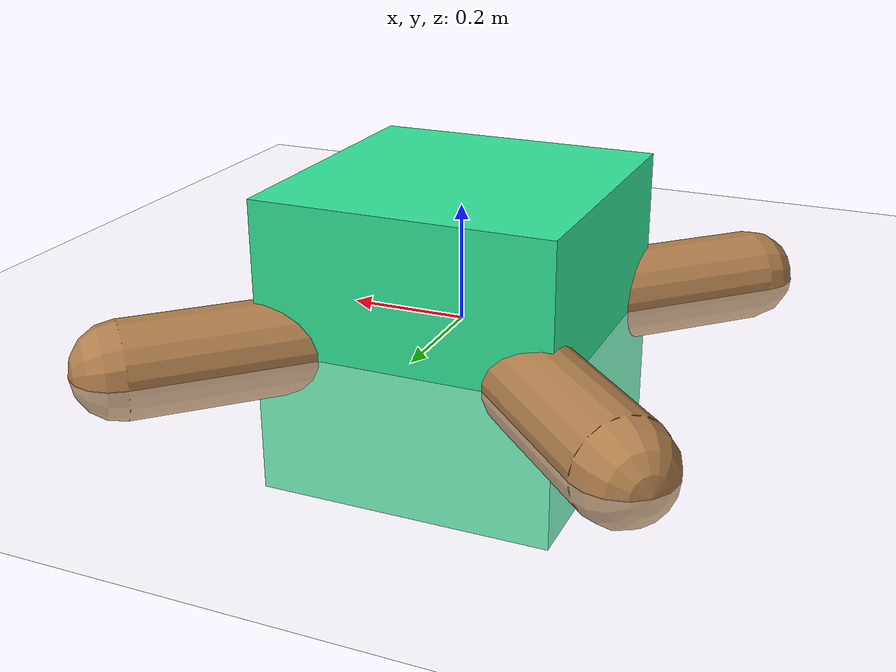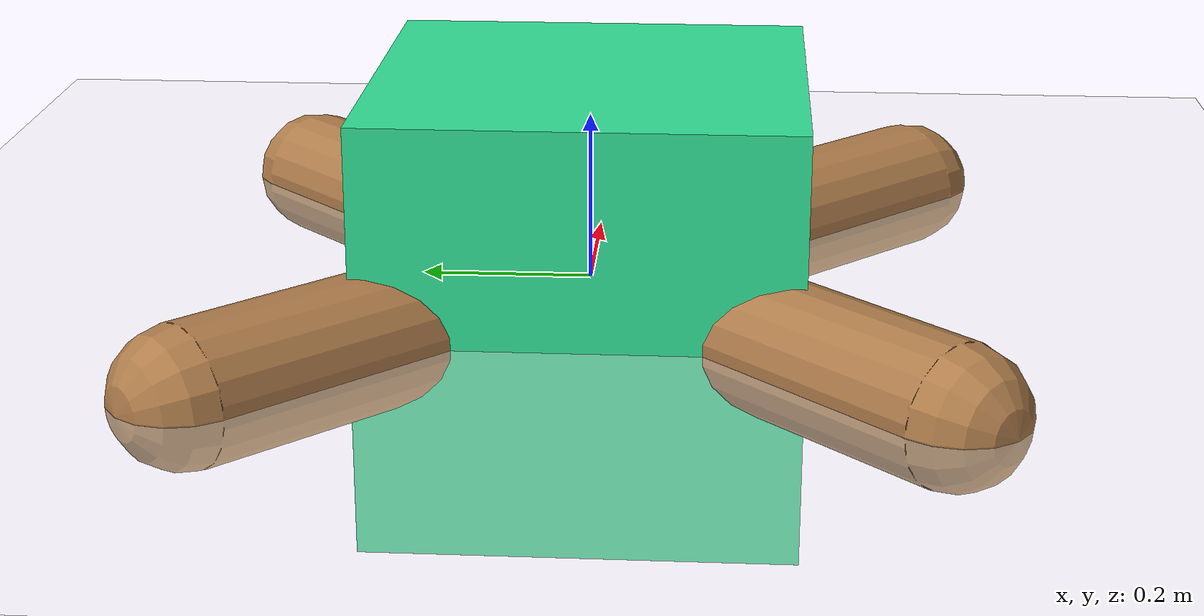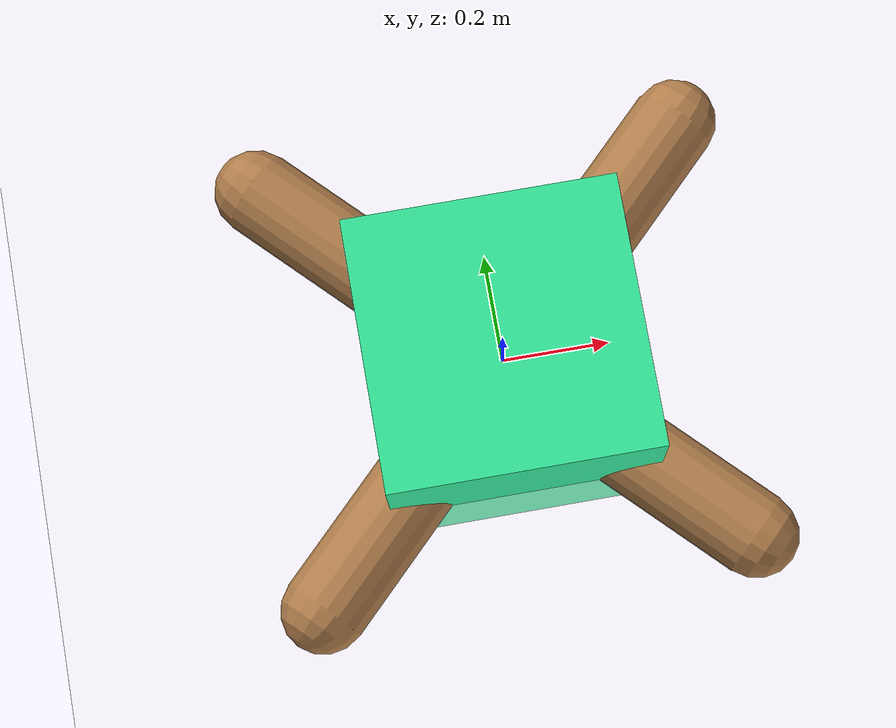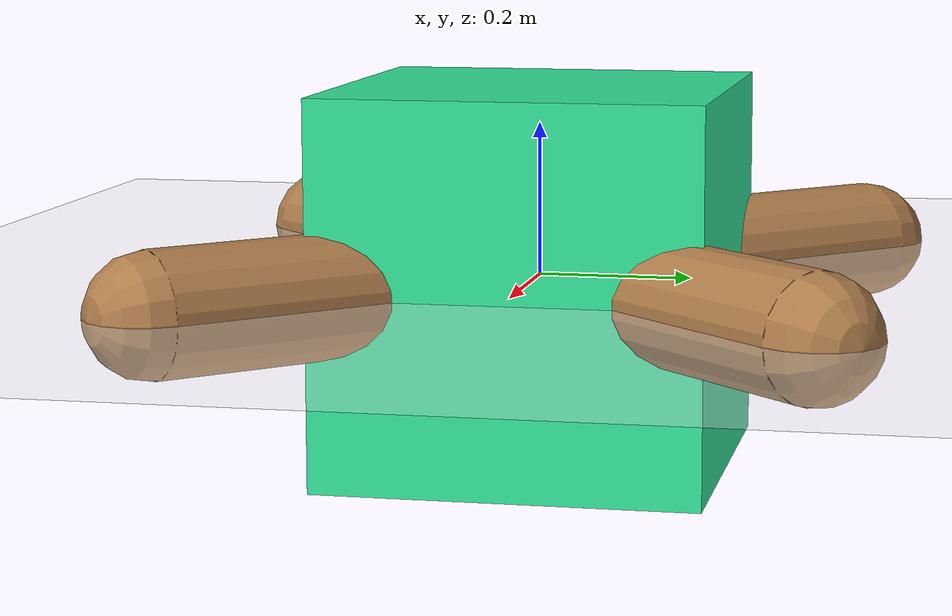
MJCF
<mujoco model="ant-box">
  <asset>
    <texture name="skybox" type="skybox" builtin="gradient" rgb1=".2 .3 .4" rgb2="0 0 0" width="800" height="800" mark="random" markrgb="1 1 1"/>
    <texture name="grid" type="2d" builtin="checker" rgb1=".1 .2 .2" rgb2=".2 .3 .3" width="300" height="300" mark="edge" markrgb=".3 .2 .3"/>
    <material name="grid" texture="grid" texrepeat="1 1" texuniform="true" reflectance=".2"/>
    <material name="self" rgba=".7 .5 .3 1"/>
  </asset>
  <visual>
    <headlight ambient=".4 .4 .4" diffuse=".8 .8 .8" specular="0.1 0.1 0.1"/>
    <map znear=".001"/>
    <quality shadowsize="16384"/>
  </visual>
  <compiler angle="degree" coordinate="global" inertiafromgeom="true"/>
  <option integrator="RK4" timestep="0.01"/>
  <default>
    <joint armature="1" damping="1" limited="true"/>
    <geom conaffinity="0" condim="3" density="1000" friction="1.0 0.005 0.002" margin="0.01" rgba=".7 .5 .3 1"/>
  </default>
  <worldbody>
    <light cutoff="100" diffuse="1 1 1" dir="0.3 0 -1.3" directional="true" exponent="1" pos="-30 0 130" specular=".1 .1 .1"/>
    <geom conaffinity="1" condim="3" name="floor" pos="0 0 0" rgba="1 1 1 1" size="200 200 .125" type="plane" material="grid"/>
    <body name="0" pos="0 0 0">
      <camera name="track" mode="trackcom" pos="0 -10 5" quat="0.831 0.556 0 0"/>
      <geom pos="0 0 0" size="0.25" type="sphere"/>
      <joint armature="0" damping="0" limited="false" margin="0.01" name="root" pos="0 0 0" type="free"/>
      <body name="1" pos="0 0 0">
        <joint axis="-0.707107 0.707107 0" name="1_joint" pos="0 0 0" range="-30 30" type="hinge"/>
        <geom fromto="0 0 0 0.4 0.4 0" size="0.08" type="capsule"/>
      </body>
      <body name="2" pos="0 0 0">
        <joint axis="-0.707107 -0.707107 0" name="2_joint" pos="0 0 0" range="-30 30" type="hinge"/>
        <geom fromto="0 0 0 -0.4 0.4 0" size="0.08" type="capsule"/>
      </body>
      <body name="3" pos="0 0 0">
        <joint axis="0.707107 -0.707107 0" name="3_joint" pos="0 0 0" range="-30 30" type="hinge"/>
        <geom fromto="0 0 0 -0.4 -0.4 0" size="0.08" type="capsule"/>
      </body>
      <body name="4" pos="0 0 0">
        <joint axis="0.707107 0.707107 0" name="4_joint" pos="0 0 0" range="-30 30" type="hinge"/>
        <geom fromto="0 0 0 0.4 -0.4 0" size="0.08" type="capsule"/>
      </body>
    </body>
    <body name="box" pos="0 0 0">
      <freejoint name="box_joint"/>
      <geom type="box" size="0.25 0.25 0.25" rgba="0.2 0.9 0.6 1.0"
            contype="1" conaffinity="1" density="10" friction="1.0 0.005 0.002"/>
    </body>
  </worldbody>
  <actuator>
    <motor ctrllimited="true" ctrlrange="-1.0 1.0" joint="1_joint" gear="150" name="1_joint"/>
    <motor ctrllimited="true" ctrlrange="-1.0 1.0" joint="2_joint" gear="150" name="2_joint"/>
    <motor ctrllimited="true" ctrlrange="-1.0 1.0" joint="3_joint" gear="150" name="3_joint"/>
    <motor ctrllimited="true" ctrlrange="-1.0 1.0" joint="4_joint" gear="150" name="4_joint"/>
  </actuator>
</mujoco>
